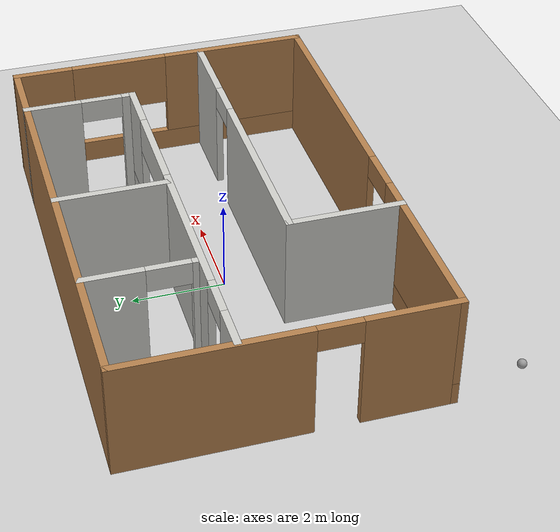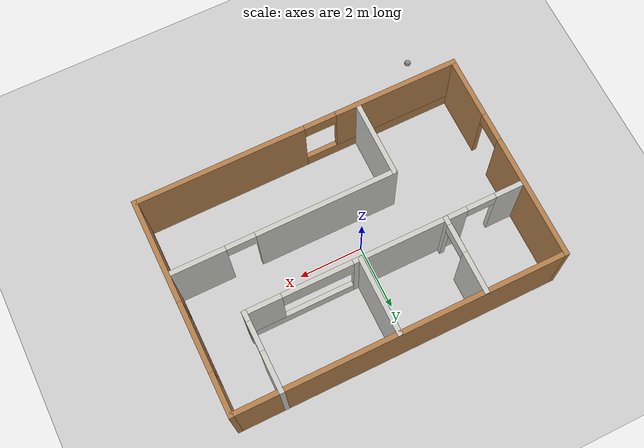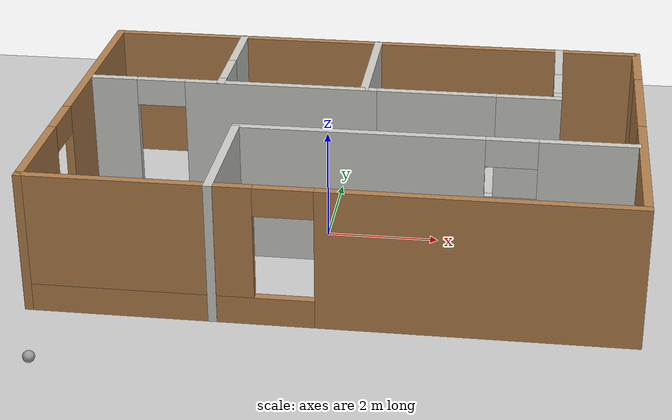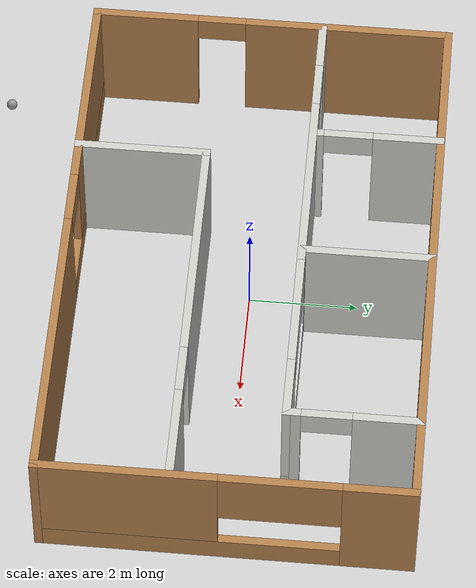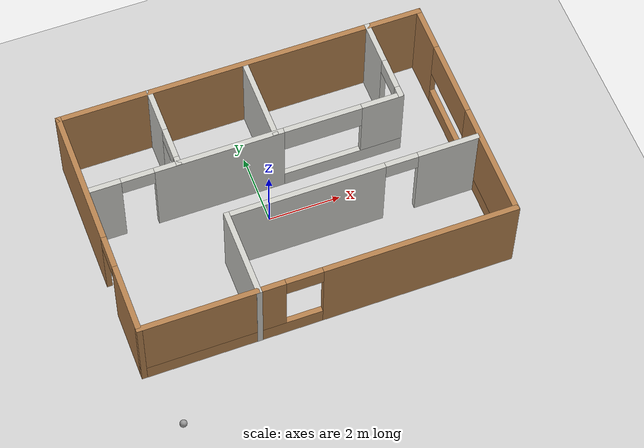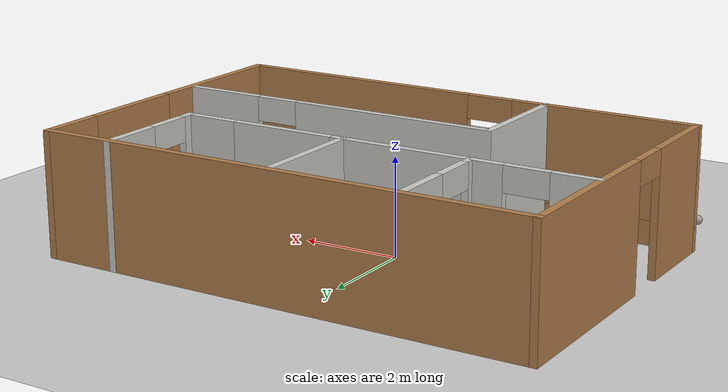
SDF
<sdf version="1.6">
 <world name="default">
  <light name="sun" type="directional">
   <pose>0 0 10 0 -0 0</pose>
   <diffuse>0.8 0.8 0.8 1</diffuse>
   <specular>0.2 0.2 0.2 1</specular>
   <attenuation>
    <range>1000</range>
    <constant>0.9</constant>
    <linear>0.01</linear>
    <quadratic>0.001</quadratic>
   </attenuation>
   <direction>-0.5 0.1 -0.9</direction>
  </light>
  <model name="ground_plane">
   <static>1</static>
   <link name="link">
    <collision name="collision">
     <geometry><plane><normal>0 0 1</normal><size>100 100</size></plane></geometry>
     <surface>
      <contact><collide_bitmask>65535</collide_bitmask></contact>
      <friction><ode><mu>100</mu><mu2>50</mu2></ode></friction>
     </surface>
    </collision>
    <visual name="visual">
     <cast_shadows>0</cast_shadows>
     <geometry><plane><normal>0 0 1</normal><size>100 100</size></plane></geometry>
     <material>
      <script><uri>file://media/materials/scripts/gazebo.material</uri><name>Gazebo/Grey</name></script>
     </material>
    </visual>
   </link>
  </model>
  <gravity>0 0 -9.8</gravity>
  <magnetic_field>6e-06 2.3e-05 -4.2e-05</magnetic_field>
  <atmosphere type="adiabatic"/>
  <physics name="default_physics" default="0" type="ode">
   <max_step_size>0.001</max_step_size>
   <real_time_factor>1</real_time_factor>
   <real_time_update_rate>1000</real_time_update_rate>
  </physics>
  <scene><ambient>0.4 0.4 0.4 1</ambient><background>0.7 0.7 0.7 1</background><shadows>1</shadows></scene>
  <spherical_coordinates>
   <surface_model>EARTH_WGS84</surface_model>
   <latitude_deg>0</latitude_deg>
   <longitude_deg>0</longitude_deg>
   <elevation>0</elevation>
   <heading_deg>0</heading_deg>
  </spherical_coordinates>
  <model name="new_home">
   <pose>0.439115 0.0268 0 0 -0 0</pose>
   <link name="Wall_0">
    <collision name="Wall_0_Collision">
     <geometry><box><size>10.25 0.15 2.5</size></box></geometry>
     <pose>0 0 1.25 0 -0 0</pose>
    </collision>
    <visual name="Wall_0_Visual">
     <pose>0 0 1.25 0 -0 0</pose>
     <geometry><box><size>10.25 0.15 2.5</size></box></geometry>
     <material>
      <script><uri>file://media/materials/scripts/gazebo.material</uri><name>Gazebo/Wood</name></script>
      <ambient>1 1 1 1</ambient>
     </material>
     <meta><layer>0</layer></meta>
    </visual>
    <pose>0 3.30103 0 0 -0 0</pose>
   </link>
   <link name="Wall_1">
    <pose>5.05 0.001029 0 0 0 -1.5708</pose>
    <visual name="Wall_1_Visual_0">
     <pose>-2.70664 0 1.25 0 -0 0</pose>
     <geometry><box><size>1.33673 0.15 2.5</size></box></geometry>
     <material>
      <script><uri>file://media/materials/scripts/gazebo.material</uri><name>Gazebo/Wood</name></script>
      <ambient>1 1 1 1</ambient>
     </material>
     <meta><layer>0</layer></meta>
    </visual>
    <collision name="Wall_1_Collision_0">
     <geometry><box><size>1.33673 0.15 2.5</size></box></geometry>
     <pose>-2.70664 0 1.25 0 -0 0</pose>
    </collision>
    <visual name="Wall_1_Visual_1">
     <pose>0.668364 0 0.25 0 -0 0</pose>
     <geometry><box><size>5.41327 0.15 0.5</size></box></geometry>
     <material>
      <script><uri>file://media/materials/scripts/gazebo.material</uri><name>Gazebo/Wood</name></script>
      <ambient>1 1 1 1</ambient>
     </material>
     <meta><layer>0</layer></meta>
    </visual>
    <collision name="Wall_1_Collision_1">
     <geometry><box><size>5.41327 0.15 0.5</size></box></geometry>
     <pose>0.668364 0 0.25 0 -0 0</pose>
    </collision>
    <visual name="Wall_1_Visual_2">
     <pose>1.74555 0 1.5 0 -0 0</pose>
     <geometry><box><size>3.25889 0.15 2</size></box></geometry>
     <material>
      <script><uri>file://media/materials/scripts/gazebo.material</uri><name>Gazebo/Wood</name></script>
      <ambient>1 1 1 1</ambient>
     </material>
     <meta><layer>0</layer></meta>
    </visual>
    <collision name="Wall_1_Collision_2">
     <geometry><box><size>3.25889 0.15 2</size></box></geometry>
     <pose>1.74555 0 1.5 0 -0 0</pose>
    </collision>
    <visual name="Wall_1_Visual_3">
     <pose>-0.961081 0 1.9 0 -0 0</pose>
     <geometry><box><size>2.15438 0.15 1.2</size></box></geometry>
     <material>
      <script><uri>file://media/materials/scripts/gazebo.material</uri><name>Gazebo/Wood</name></script>
      <ambient>1 1 1 1</ambient>
     </material>
     <meta><layer>0</layer></meta>
    </visual>
    <collision name="Wall_1_Collision_3">
     <geometry><box><size>2.15438 0.15 1.2</size></box></geometry>
     <pose>-0.961081 0 1.9 0 -0 0</pose>
    </collision>
   </link>
   <link name="Wall_11">
    <pose>-2.55612 2.1252 0 0 0 -1.5708</pose>
    <visual name="Wall_11_Visual_0">
     <pose>-0.583962 0 1.25 0 -0 0</pose>
     <geometry><box><size>1.31008 0.15 2.5</size></box></geometry>
     <material>
      <script><uri>file://media/materials/scripts/gazebo.material</uri><name>Gazebo/CeilingTiled</name></script>
      <ambient>1 1 1 1</ambient>
     </material>
     <meta><layer>0</layer></meta>
    </visual>
    <collision name="Wall_11_Collision_0">
     <geometry><box><size>1.31008 0.15 2.5</size></box></geometry>
     <pose>-0.583962 0 1.25 0 -0 0</pose>
    </collision>
    <visual name="Wall_11_Visual_1">
     <pose>1.10504 0 1.25 0 -0 0</pose>
     <geometry><box><size>0.267924 0.15 2.5</size></box></geometry>
     <material>
      <script><uri>file://media/materials/scripts/gazebo.material</uri><name>Gazebo/CeilingTiled</name></script>
      <ambient>1 1 1 1</ambient>
     </material>
     <meta><layer>0</layer></meta>
    </visual>
    <collision name="Wall_11_Collision_1">
     <geometry><box><size>0.267924 0.15 2.5</size></box></geometry>
     <pose>1.10504 0 1.25 0 -0 0</pose>
    </collision>
    <visual name="Wall_11_Visual_2">
     <pose>0.521076 0 2.25 0 -0 0</pose>
     <geometry><box><size>0.9 0.15 0.5</size></box></geometry>
     <material>
      <script><uri>file://media/materials/scripts/gazebo.material</uri><name>Gazebo/CeilingTiled</name></script>
      <ambient>1 1 1 1</ambient>
     </material>
     <meta><layer>0</layer></meta>
    </visual>
    <collision name="Wall_11_Collision_2">
     <geometry><box><size>0.9 0.15 0.5</size></box></geometry>
     <pose>0.521076 0 2.25 0 -0 0</pose>
    </collision>
   </link>
   <link name="Wall_13">
    <collision name="Wall_13_Collision">
     <geometry><box><size>2.5 0.15 2.5</size></box></geometry>
     <pose>0 0 1.25 0 -0 0</pose>
    </collision>
    <visual name="Wall_13_Visual">
     <pose>0 0 1.25 0 -0 0</pose>
     <geometry><box><size>2.5 0.15 2.5</size></box></geometry>
     <material>
      <script><uri>file://media/materials/scripts/gazebo.material</uri><name>Gazebo/CeilingTiled</name></script>
      <ambient>1 1 1 1</ambient>
     </material>
     <meta><layer>0</layer></meta>
    </visual>
    <pose>-1.91259 -2.12832 0 0 -0 1.5708</pose>
   </link>
   <link name="Wall_14">
    <pose>1.51241 -0.953315 0 0 -0 0</pose>
    <visual name="Wall_14_Visual_0">
     <pose>-1.30414 0 1.25 0 -0 0</pose>
     <geometry><box><size>4.39172 0.15 2.5</size></box></geometry>
     <material>
      <script><uri>file://media/materials/scripts/gazebo.material</uri><name>Gazebo/CeilingTiled</name></script>
      <ambient>1 1 1 1</ambient>
     </material>
     <meta><layer>0</layer></meta>
    </visual>
    <collision name="Wall_14_Collision_0">
     <geometry><box><size>4.39172 0.15 2.5</size></box></geometry>
     <pose>-1.30414 0 1.25 0 -0 0</pose>
    </collision>
    <visual name="Wall_14_Visual_1">
     <pose>2.64586 0 1.25 0 -0 0</pose>
     <geometry><box><size>1.70828 0.15 2.5</size></box></geometry>
     <material>
      <script><uri>file://media/materials/scripts/gazebo.material</uri><name>Gazebo/CeilingTiled</name></script>
      <ambient>1 1 1 1</ambient>
     </material>
     <meta><layer>0</layer></meta>
    </visual>
    <collision name="Wall_14_Collision_1">
     <geometry><box><size>1.70828 0.15 2.5</size></box></geometry>
     <pose>2.64586 0 1.25 0 -0 0</pose>
    </collision>
    <visual name="Wall_14_Visual_2">
     <pose>1.34172 0 2.25 0 -0 0</pose>
     <geometry><box><size>0.9 0.15 0.5</size></box></geometry>
     <material>
      <script><uri>file://media/materials/scripts/gazebo.material</uri><name>Gazebo/CeilingTiled</name></script>
      <ambient>1 1 1 1</ambient>
     </material>
     <meta><layer>0</layer></meta>
    </visual>
    <collision name="Wall_14_Collision_2">
     <geometry><box><size>0.9 0.15 0.5</size></box></geometry>
     <pose>1.34172 0 2.25 0 -0 0</pose>
    </collision>
   </link>
   <link name="Wall_16">
    <pose>-0.708317 0.953315 0 0 -0 0</pose>
    <visual name="Wall_16_Visual_0">
     <pose>-3.8941 0 1.25 0 -0 0</pose>
     <geometry><box><size>0.961793 0.15 2.5</size></box></geometry>
     <material>
      <script><uri>file://media/materials/scripts/gazebo.material</uri><name>Gazebo/CeilingTiled</name></script>
      <ambient>1 1 1 1</ambient>
     </material>
     <meta><layer>0</layer></meta>
    </visual>
    <collision name="Wall_16_Collision_0">
     <geometry><box><size>0.961793 0.15 2.5</size></box></geometry>
     <pose>-3.8941 0 1.25 0 -0 0</pose>
    </collision>
    <visual name="Wall_16_Visual_1">
     <pose>-0.736766 0 1.25 0 -0 0</pose>
     <geometry><box><size>3.55288 0.15 2.5</size></box></geometry>
     <material>
      <script><uri>file://media/materials/scripts/gazebo.material</uri><name>Gazebo/CeilingTiled</name></script>
      <ambient>1 1 1 1</ambient>
     </material>
     <meta><layer>0</layer></meta>
    </visual>
    <collision name="Wall_16_Collision_1">
     <geometry><box><size>3.55288 0.15 2.5</size></box></geometry>
     <pose>-0.736766 0 1.25 0 -0 0</pose>
    </collision>
    <visual name="Wall_16_Visual_2">
     <pose>2.70734 0 0.25 0 -0 0</pose>
     <geometry><box><size>3.33533 0.15 0.5</size></box></geometry>
     <material>
      <script><uri>file://media/materials/scripts/gazebo.material</uri><name>Gazebo/CeilingTiled</name></script>
      <ambient>1 1 1 1</ambient>
     </material>
     <meta><layer>0</layer></meta>
    </visual>
    <collision name="Wall_16_Collision_2">
     <geometry><box><size>3.33533 0.15 0.5</size></box></geometry>
     <pose>2.70734 0 0.25 0 -0 0</pose>
    </collision>
    <visual name="Wall_16_Visual_3">
     <pose>3.78779 0 1.5 0 -0 0</pose>
     <geometry><box><size>1.17443 0.15 2</size></box></geometry>
     <material>
      <script><uri>file://media/materials/scripts/gazebo.material</uri><name>Gazebo/CeilingTiled</name></script>
      <ambient>1 1 1 1</ambient>
     </material>
     <meta><layer>0</layer></meta>
    </visual>
    <collision name="Wall_16_Collision_3">
     <geometry><box><size>1.17443 0.15 2</size></box></geometry>
     <pose>3.78779 0 1.5 0 -0 0</pose>
    </collision>
    <visual name="Wall_16_Visual_4">
     <pose>2.12012 0 2.1 0 -0 0</pose>
     <geometry><box><size>2.1609 0.15 0.8</size></box></geometry>
     <material>
      <script><uri>file://media/materials/scripts/gazebo.material</uri><name>Gazebo/CeilingTiled</name></script>
      <ambient>1 1 1 1</ambient>
     </material>
     <meta><layer>0</layer></meta>
    </visual>
    <collision name="Wall_16_Collision_4">
     <geometry><box><size>2.1609 0.15 0.8</size></box></geometry>
     <pose>2.12012 0 2.1 0 -0 0</pose>
    </collision>
    <visual name="Wall_16_Visual_5">
     <pose>-2.96321 0 2.25 0 -0 0</pose>
     <geometry><box><size>0.9 0.15 0.5</size></box></geometry>
     <material>
      <script><uri>file://media/materials/scripts/gazebo.material</uri><name>Gazebo/CeilingTiled</name></script>
      <ambient>1 1 1 1</ambient>
     </material>
     <meta><layer>0</layer></meta>
    </visual>
    <collision name="Wall_16_Collision_5">
     <geometry><box><size>0.9 0.15 0.5</size></box></geometry>
     <pose>-2.96321 0 2.25 0 -0 0</pose>
    </collision>
   </link>
   <link name="Wall_17">
    <pose>3.59168 2.12832 0 0 -0 1.5708</pose>
    <visual name="Wall_17_Visual_0">
     <pose>-1.08571 0 1.25 0 -0 0</pose>
     <geometry><box><size>0.328575 0.15 2.5</size></box></geometry>
     <material>
      <script><uri>file://media/materials/scripts/gazebo.material</uri><name>Gazebo/CeilingTiled</name></script>
      <ambient>1 1 1 1</ambient>
     </material>
     <meta><layer>0</layer></meta>
    </visual>
    <collision name="Wall_17_Collision_0">
     <geometry><box><size>0.328575 0.15 2.5</size></box></geometry>
     <pose>-1.08571 0 1.25 0 -0 0</pose>
    </collision>
    <visual name="Wall_17_Visual_1">
     <pose>0.614288 0 1.25 0 -0 0</pose>
     <geometry><box><size>1.27143 0.15 2.5</size></box></geometry>
     <material>
      <script><uri>file://media/materials/scripts/gazebo.material</uri><name>Gazebo/CeilingTiled</name></script>
      <ambient>1 1 1 1</ambient>
     </material>
     <meta><layer>0</layer></meta>
    </visual>
    <collision name="Wall_17_Collision_1">
     <geometry><box><size>1.27143 0.15 2.5</size></box></geometry>
     <pose>0.614288 0 1.25 0 -0 0</pose>
    </collision>
    <visual name="Wall_17_Visual_2">
     <pose>-0.471425 0 2.25 0 -0 0</pose>
     <geometry><box><size>0.9 0.15 0.5</size></box></geometry>
     <material>
      <script><uri>file://media/materials/scripts/gazebo.material</uri><name>Gazebo/CeilingTiled</name></script>
      <ambient>1 1 1 1</ambient>
     </material>
     <meta><layer>0</layer></meta>
    </visual>
    <collision name="Wall_17_Collision_2">
     <geometry><box><size>0.9 0.15 0.5</size></box></geometry>
     <pose>-0.471425 0 2.25 0 -0 0</pose>
    </collision>
   </link>
   <link name="Wall_2">
    <pose>0 -3.29897 0 0 -0 3.14159</pose>
    <visual name="Wall_2_Visual_0">
     <pose>-2.46304 0 1.25 0 -0 0</pose>
     <geometry><box><size>5.32392 0.15 2.5</size></box></geometry>
     <material>
      <script><uri>file://media/materials/scripts/gazebo.material</uri><name>Gazebo/Wood</name></script>
      <ambient>1 1 1 1</ambient>
     </material>
     <meta><layer>0</layer></meta>
    </visual>
    <collision name="Wall_2_Collision_0">
     <geometry><box><size>5.32392 0.15 2.5</size></box></geometry>
     <pose>-2.46304 0 1.25 0 -0 0</pose>
    </collision>
    <visual name="Wall_2_Visual_1">
     <pose>2.66196 0 0.25 0 -0 0</pose>
     <geometry><box><size>4.92608 0.15 0.5</size></box></geometry>
     <material>
      <script><uri>file://media/materials/scripts/gazebo.material</uri><name>Gazebo/Wood</name></script>
      <ambient>1 1 1 1</ambient>
     </material>
     <meta><layer>0</layer></meta>
    </visual>
    <collision name="Wall_2_Collision_1">
     <geometry><box><size>4.92608 0.15 0.5</size></box></geometry>
     <pose>2.66196 0 0.25 0 -0 0</pose>
    </collision>
    <visual name="Wall_2_Visual_2">
     <pose>3.16196 0 1.5 0 -0 0</pose>
     <geometry><box><size>3.92608 0.15 2</size></box></geometry>
     <material>
      <script><uri>file://media/materials/scripts/gazebo.material</uri><name>Gazebo/Wood</name></script>
      <ambient>1 1 1 1</ambient>
     </material>
     <meta><layer>0</layer></meta>
    </visual>
    <collision name="Wall_2_Collision_2">
     <geometry><box><size>3.92608 0.15 2</size></box></geometry>
     <pose>3.16196 0 1.5 0 -0 0</pose>
    </collision>
    <visual name="Wall_2_Visual_3">
     <pose>0.698918 0 2.25 0 -0 0</pose>
     <geometry><box><size>1 0.15 0.5</size></box></geometry>
     <material>
      <script><uri>file://media/materials/scripts/gazebo.material</uri><name>Gazebo/Wood</name></script>
      <ambient>1 1 1 1</ambient>
     </material>
     <meta><layer>0</layer></meta>
    </visual>
    <collision name="Wall_2_Collision_3">
     <geometry><box><size>1 0.15 0.5</size></box></geometry>
     <pose>0.698918 0 2.25 0 -0 0</pose>
    </collision>
   </link>
   <link name="Wall_3">
    <pose>-5.05 0.001029 0 0 -0 1.5708</pose>
    <visual name="Wall_3_Visual_0">
     <pose>-2.38618 0 1.25 0 -0 0</pose>
     <geometry><box><size>1.97763 0.15 2.5</size></box></geometry>
     <material>
      <script><uri>file://media/materials/scripts/gazebo.material</uri><name>Gazebo/Wood</name></script>
      <ambient>1 1 1 1</ambient>
     </material>
     <meta><layer>0</layer></meta>
    </visual>
    <collision name="Wall_3_Collision_0">
     <geometry><box><size>1.97763 0.15 2.5</size></box></geometry>
     <pose>-2.38618 0 1.25 0 -0 0</pose>
    </collision>
    <visual name="Wall_3_Visual_1">
     <pose>1.43882 0 1.25 0 -0 0</pose>
     <geometry><box><size>3.87237 0.15 2.5</size></box></geometry>
     <material>
      <script><uri>file://media/materials/scripts/gazebo.material</uri><name>Gazebo/Wood</name></script>
      <ambient>1 1 1 1</ambient>
     </material>
     <meta><layer>0</layer></meta>
    </visual>
    <collision name="Wall_3_Collision_1">
     <geometry><box><size>3.87237 0.15 2.5</size></box></geometry>
     <pose>1.43882 0 1.25 0 -0 0</pose>
    </collision>
    <visual name="Wall_3_Visual_2">
     <pose>-0.947367 0 2.25 0 -0 0</pose>
     <geometry><box><size>0.9 0.15 0.5</size></box></geometry>
     <material>
      <script><uri>file://media/materials/scripts/gazebo.material</uri><name>Gazebo/Wood</name></script>
      <ambient>1 1 1 1</ambient>
     </material>
     <meta><layer>0</layer></meta>
    </visual>
    <collision name="Wall_3_Collision_2">
     <geometry><box><size>0.9 0.15 0.5</size></box></geometry>
     <pose>-0.947367 0 2.25 0 -0 0</pose>
    </collision>
   </link>
   <link name="Wall_9">
    <collision name="Wall_9_Collision">
     <geometry><box><size>2.48292 0.15 2.5</size></box></geometry>
     <pose>0 0 1.25 0 -0 0</pose>
    </collision>
    <visual name="Wall_9_Visual">
     <pose>0 0 1.25 0 -0 0</pose>
     <geometry><box><size>2.48292 0.15 2.5</size></box></geometry>
     <material>
      <script><uri>file://media/materials/scripts/gazebo.material</uri><name>Gazebo/CeilingTiled</name></script>
      <ambient>1 1 1 1</ambient>
     </material>
     <meta><layer>0</layer></meta>
    </visual>
    <pose>0.093537 2.12777 0 0 0 -1.57058</pose>
   </link>
   <static>1</static>
  </model>
  <model name="my_ball">
   <link name="link_0">
    <inertial>
     <mass>1</mass>
     <inertia><ixx>0.1</ixx><ixy>0</ixy><ixz>0</ixz><iyy>0.1</iyy><iyz>0</iyz><izz>0.1</izz></inertia>
    </inertial>
    <visual name="visual">
     <geometry><sphere><radius>0.1</radius></sphere></geometry>
     <material>
      <lighting>1</lighting>
      <script><uri>file://media/materials/scripts/gazebo.material</uri><name>Gazebo/Grey</name></script>
      <shader type="pixel"><normal_map>__default__</normal_map></shader>
      <ambient>1 1 1 1</ambient>
      <diffuse>1 1 1 1</diffuse>
      <specular>1 1 1 1</specular>
      <emissive>1 1 1 1</emissive>
     </material>
    </visual>
    <collision name="collision">
     <geometry><sphere><radius>0.1</radius></sphere></geometry>
     <surface>
      <friction>
       <ode><mu>1</mu><mu2>1</mu2><fdir1>0 0 0</fdir1><slip1>0</slip1><slip2>0</slip2></ode>
       <torsional>
        <coefficient>1</coefficient>
        <patch_radius>0</patch_radius>
        <surface_radius>0</surface_radius>
        <use_patch_radius>1</use_patch_radius>
        <ode><slip>0</slip></ode>
       </torsional>
      </friction>
      <bounce><restitution_coefficient>0</restitution_coefficient><threshold>1e+06</threshold></bounce>
      <contact>
       <collide_without_contact>0</collide_without_contact>
       <collide_without_contact_bitmask>1</collide_without_contact_bitmask>
       <collide_bitmask>1</collide_bitmask>
       <ode>
        <soft_cfm>0</soft_cfm>
        <soft_erp>0.2</soft_erp>
        <kp>1e+13</kp>
        <kd>1</kd>
        <max_vel>0.01</max_vel>
        <min_depth>0</min_depth>
       </ode>
       <bullet>
        <split_impulse>1</split_impulse>
        <split_impulse_penetration_threshold>-0.01</split_impulse_penetration_threshold>
        <soft_cfm>0</soft_cfm>
        <soft_erp>0.2</soft_erp>
        <kp>1e+13</kp>
        <kd>1</kd>
       </bullet>
      </contact>
     </surface>
    </collision>
   </link>
   <static>0</static>
   <pose>-4.11584 -4.94305 0.1 0 -0 0</pose>
  </model>
 </world>
</sdf>
